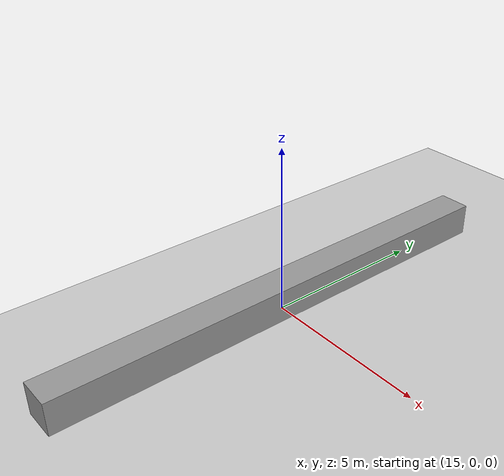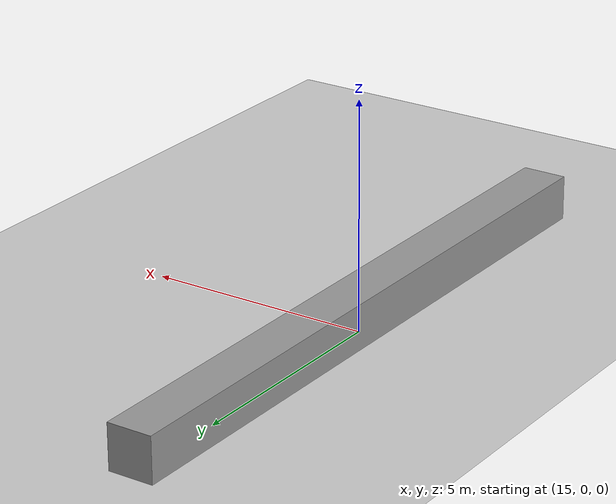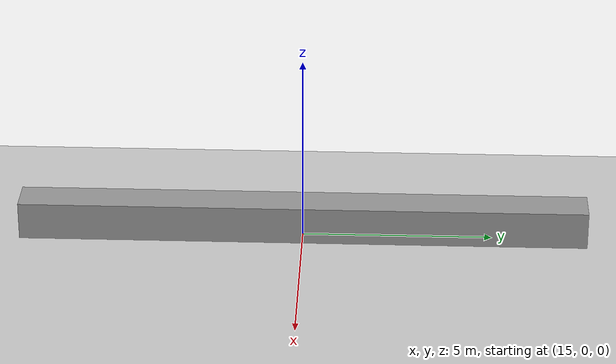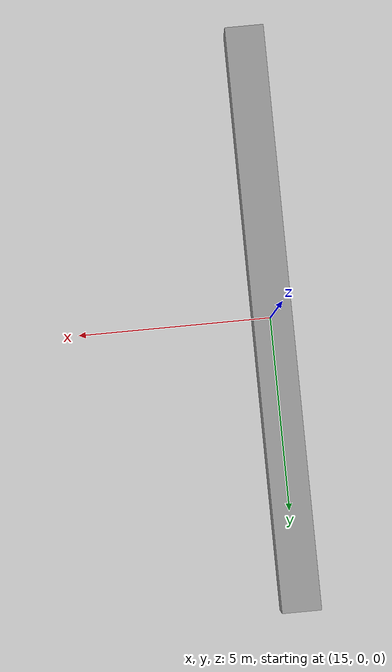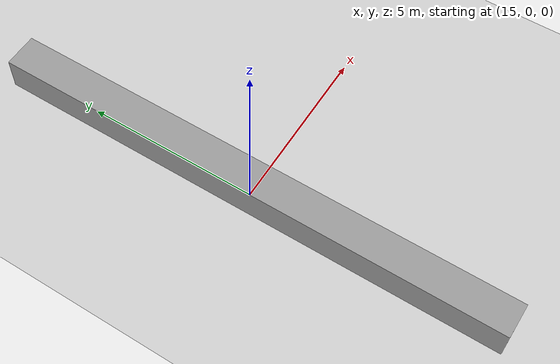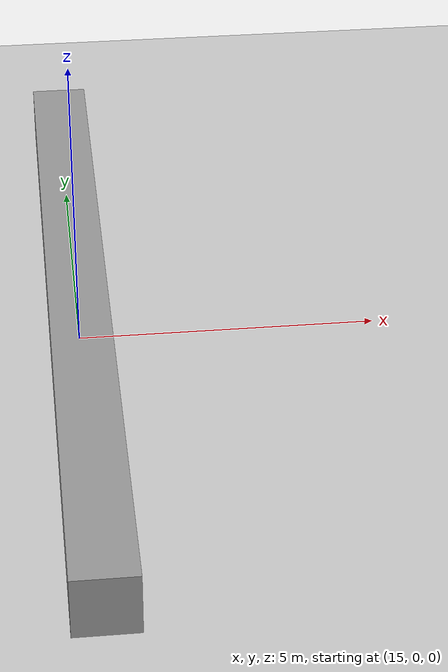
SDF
<sdf version="1.6">
    <world name="EV Grand Prix">
        <scene>
            <ambient>1 1 1 1</ambient>
            <background>0.7 0.7 0.7 1</background>
            <shadows>true</shadows>
            <grid>false</grid>
            <origin_visual>false</origin_visual>
        </scene>
        <include>
            <uri>model://sun</uri>
        </include>
        <include>
            <uri>model://ground_plane</uri>
            <pose>0 20 0 0 0 0 0</pose>
        </include>
        <include>
            <uri>model://ground_plane</uri>
            <pose>50 20 0 0 0 0 0</pose>
        </include>
        <include>
            <uri>model://LongBox</uri>
            <pose frame=''>15 0 0.5 0 0 0</pose>
        </include>

    </world>
</sdf>

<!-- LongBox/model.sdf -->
<sdf version='1.6'>
    <model name='LongBox'>
        <link name='link'>
          <collision name='collision'>
            <geometry>
              <box>
                <size>1 15 1</size>
              </box>
            </geometry>
          </collision>
          <visual name='visual'>
            <geometry>
              <box>
                <size>1 15 1</size>
              </box>
            </geometry>
            <material>
              <script>
                <name>Gazebo/Grey</name>
                <uri>file://media/materials/scripts/gazebo.material</uri>
              </script>
            </material>
          </visual>
        </link>
      </model>
</sdf>
